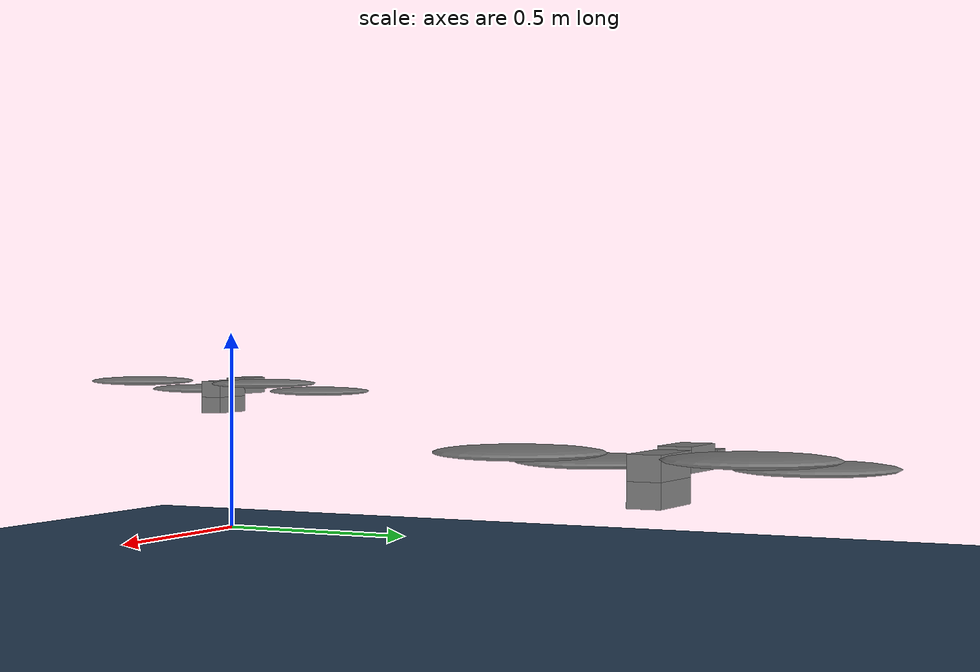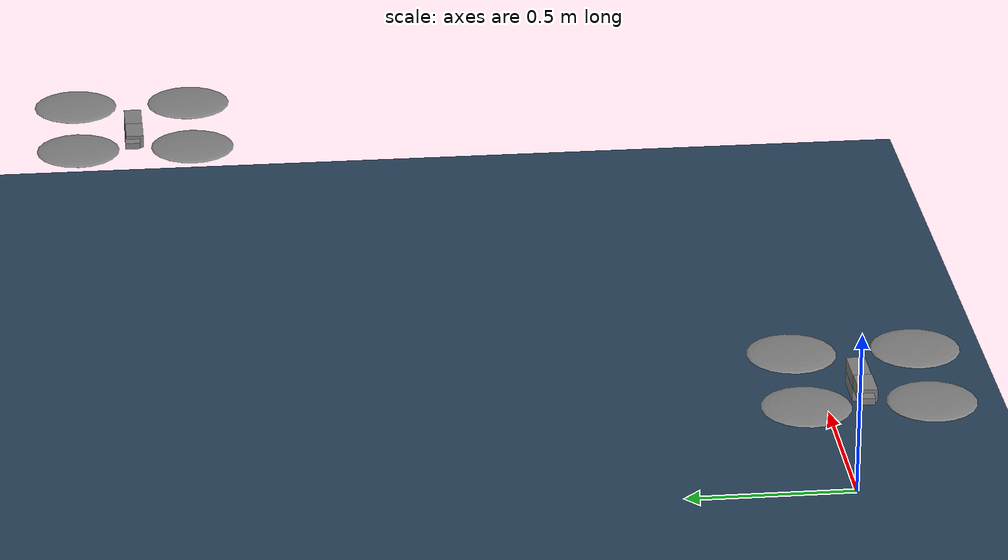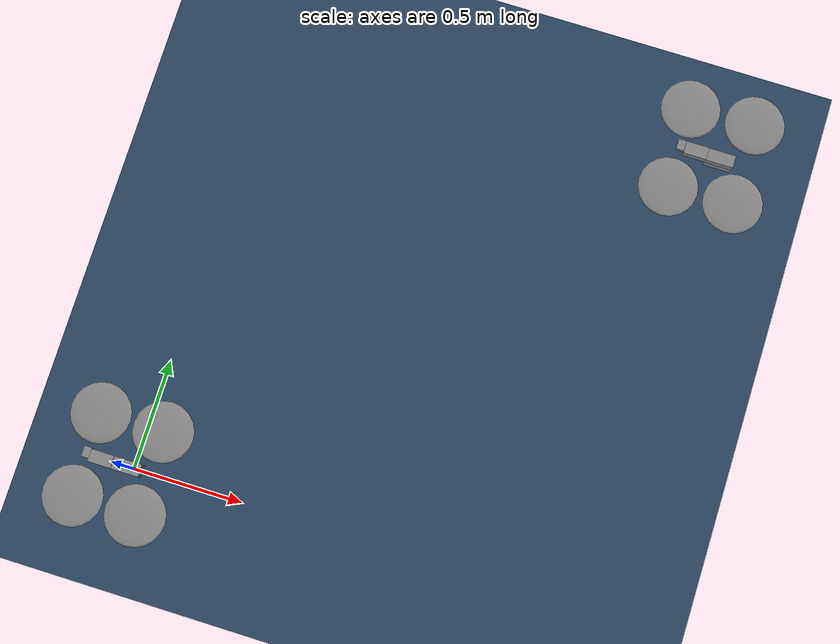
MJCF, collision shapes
<mujoco model="UAV-IDS Two-Drone Scene (Skydio X2 x2)">

  <compiler autolimits="true" assetdir="assets"/>
  <option timestep="0.01" density="1.225" viscosity="1.8e-5"/>

  <default>
    <default class="x2">
      <geom mass="0"/>
      <motor ctrlrange="0 13"/>
      <mesh scale="0.01 0.01 0.01"/>
      <default class="visual">
        <geom group="2" type="mesh" contype="0" conaffinity="0"/>
      </default>
      <default class="collision">
        <geom group="3" type="box"/>
        <default class="rotor">
          <geom type="ellipsoid" size=".13 .13 .01"/>
        </default>
      </default>
      <site group="5"/>
    </default>
  </default>

  <asset>
    <texture type="2d" file="X2_lowpoly_texture_SpinningProps_1024.png"/>
    <material name="phong3SG" texture="X2_lowpoly_texture_SpinningProps_1024"/>
    <material name="invisible" rgba="0 0 0 0"/>
    <mesh class="x2" file="X2_lowpoly.obj"/>

    <texture type="skybox" builtin="gradient" rgb1="0.3 0.5 0.7" rgb2="0 0 0" width="512" height="3072"/>
    <texture type="2d" name="groundplane" builtin="checker" mark="edge" rgb1="0.2 0.3 0.4" rgb2="0.1 0.2 0.3"
      markrgb="0.8 0.8 0.8" width="300" height="300"/>
    <material name="groundplane" texture="groundplane" texuniform="true" texrepeat="5 5" reflectance="0.2"/>
  </asset>

  <visual>
    <headlight diffuse="0.6 0.6 0.6" ambient="0.3 0.3 0.3" specular="0 0 0"/>
    <rgba haze="0.15 0.25 0.35 1"/>
    <global azimuth="-20" elevation="-20" ellipsoidinertia="true"/>
  </visual>

  <worldbody>
    <light pos="0 0 1.5" dir="0 0 -1" directional="true"/>
    <!-- flat floor, per Section 11.6 -->
    <geom name="floor" size="0 0 0.05" type="plane" material="groundplane"/>

    <!-- ================= MAIN DRONE ================= -->
    <body name="main" pos="0 0 0.3" childclass="x2">
      <freejoint/>
      <camera name="main_track" pos="-1 0 .5" xyaxes="0 -1 0 1 0 2" mode="trackcom"/>
      <site name="main_imu" pos="0 0 .02"/>
      <site name="main_gnss" pos="0 0 .03"/>
      <geom material="phong3SG" mesh="X2_lowpoly" class="visual" quat="0 0 1 1"/>
      <geom class="collision" size=".06 .027 .02" pos=".04 0 .02"/>
      <geom class="collision" size=".06 .027 .02" pos=".04 0 .06"/>
      <geom class="collision" size=".05 .027 .02" pos="-.07 0 .065"/>
      <geom class="collision" size=".023 .017 .01" pos="-.137 .008 .065" quat="1 0 0 1"/>
      <geom name="main_rotor1" class="rotor" pos="-.14 -.18 .05" mass=".25"/>
      <geom name="main_rotor2" class="rotor" pos="-.14 .18 .05" mass=".25"/>
      <geom name="main_rotor3" class="rotor" pos=".14 .18 .08" mass=".25"/>
      <geom name="main_rotor4" class="rotor" pos=".14 -.18 .08" mass=".25"/>
      <geom size=".16 .04 .02" pos="0 0 0.02" type="ellipsoid" mass=".325" class="visual" material="invisible"/>
      <site name="main_thrust1" pos="-.14 -.18 .05"/>
      <site name="main_thrust2" pos="-.14 .18 .05"/>
      <site name="main_thrust3" pos=".14 .18 .08"/>
      <site name="main_thrust4" pos=".14 -.18 .08"/>
    </body>

    <!-- ================= ATTACKER DRONE ================= -->
    <body name="att" pos="2 2 0.3" childclass="x2">
      <freejoint/>
      <camera name="att_track" pos="-1 0 .5" xyaxes="0 -1 0 1 0 2" mode="trackcom"/>
      <site name="att_imu" pos="0 0 .02"/>
      <site name="att_gnss" pos="0 0 .03"/>
      <geom material="phong3SG" mesh="X2_lowpoly" class="visual" quat="0 0 1 1" rgba="1 0.35 0.35 1"/>
      <geom class="collision" size=".06 .027 .02" pos=".04 0 .02"/>
      <geom class="collision" size=".06 .027 .02" pos=".04 0 .06"/>
      <geom class="collision" size=".05 .027 .02" pos="-.07 0 .065"/>
      <geom class="collision" size=".023 .017 .01" pos="-.137 .008 .065" quat="1 0 0 1"/>
      <geom name="att_rotor1" class="rotor" pos="-.14 -.18 .05" mass=".25"/>
      <geom name="att_rotor2" class="rotor" pos="-.14 .18 .05" mass=".25"/>
      <geom name="att_rotor3" class="rotor" pos=".14 .18 .08" mass=".25"/>
      <geom name="att_rotor4" class="rotor" pos=".14 -.18 .08" mass=".25"/>
      <geom size=".16 .04 .02" pos="0 0 0.02" type="ellipsoid" mass=".325" class="visual" material="invisible"/>
      <site name="att_thrust1" pos="-.14 -.18 .05"/>
      <site name="att_thrust2" pos="-.14 .18 .05"/>
      <site name="att_thrust3" pos=".14 .18 .08"/>
      <site name="att_thrust4" pos=".14 -.18 .08"/>
    </body>
  </worldbody>

  <actuator>
    <!-- main drone motors -->
    <motor class="x2" name="main_thrust1" site="main_thrust1" gear="0 0 1 0 0 -.0201"/>
    <motor class="x2" name="main_thrust2" site="main_thrust2" gear="0 0 1 0 0 .0201"/>
    <motor class="x2" name="main_thrust3" site="main_thrust3" gear="0 0 1 0 0 -.0201"/>
    <motor class="x2" name="main_thrust4" site="main_thrust4" gear="0 0 1 0 0 .0201"/>
    <!-- attacker drone motors -->
    <motor class="x2" name="att_thrust1" site="att_thrust1" gear="0 0 1 0 0 -.0201"/>
    <motor class="x2" name="att_thrust2" site="att_thrust2" gear="0 0 1 0 0 .0201"/>
    <motor class="x2" name="att_thrust3" site="att_thrust3" gear="0 0 1 0 0 -.0201"/>
    <motor class="x2" name="att_thrust4" site="att_thrust4" gear="0 0 1 0 0 .0201"/>
  </actuator>

  <sensor>
    <!-- === MAIN DRONE: exactly the sensors the 4 attacks + PRHN detector need === -->
    <!-- Attack 2 (IMU corruption) reads/corrupts these two, and the physics+data branches consume them -->
    <gyro name="main_gyro" site="main_imu"/>
    <accelerometer name="main_accel" site="main_imu"/>
    <!-- independent heading reference so attitude can be cross-checked while GNSS is being spoofed -->
    <magnetometer name="main_mag" site="main_imu"/>
    <!-- Attack 1 (GPS/GNSS spoofing) target; also the physics branch's position ground truth -->
    <framepos name="main_gps_pos" objtype="site" objname="main_gnss"/>
    <framequat name="main_att_quat" objtype="site" objname="main_imu"/>
    <!-- Attack 3 (actuator/command injection): true applied force per rotor, for the commanded-vs-executed residual -->
    <actuatorfrc name="main_frc1" actuator="main_thrust1"/>
    <actuatorfrc name="main_frc2" actuator="main_thrust2"/>
    <actuatorfrc name="main_frc3" actuator="main_thrust3"/>
    <actuatorfrc name="main_frc4" actuator="main_thrust4"/>

    <!-- === ATTACKER DRONE: only what's needed to compute range/bearing to the main drone, -->
    <!-- which parameterizes Attack 1 (spoof strength) and Attack 4 (jam range) via comm_link.py === -->
    <framepos name="att_gps_pos" objtype="site" objname="att_gnss"/>
    <framequat name="att_att_quat" objtype="site" objname="att_imu"/>
  </sensor>

  <keyframe>
    <key name="hover" qpos="0 0 .3 1 0 0 0  2 2 .3 1 0 0 0"
         ctrl="3.2495625 3.2495625 3.2495625 3.2495625  3.2495625 3.2495625 3.2495625 3.2495625"/>
  </keyframe>
</mujoco>
